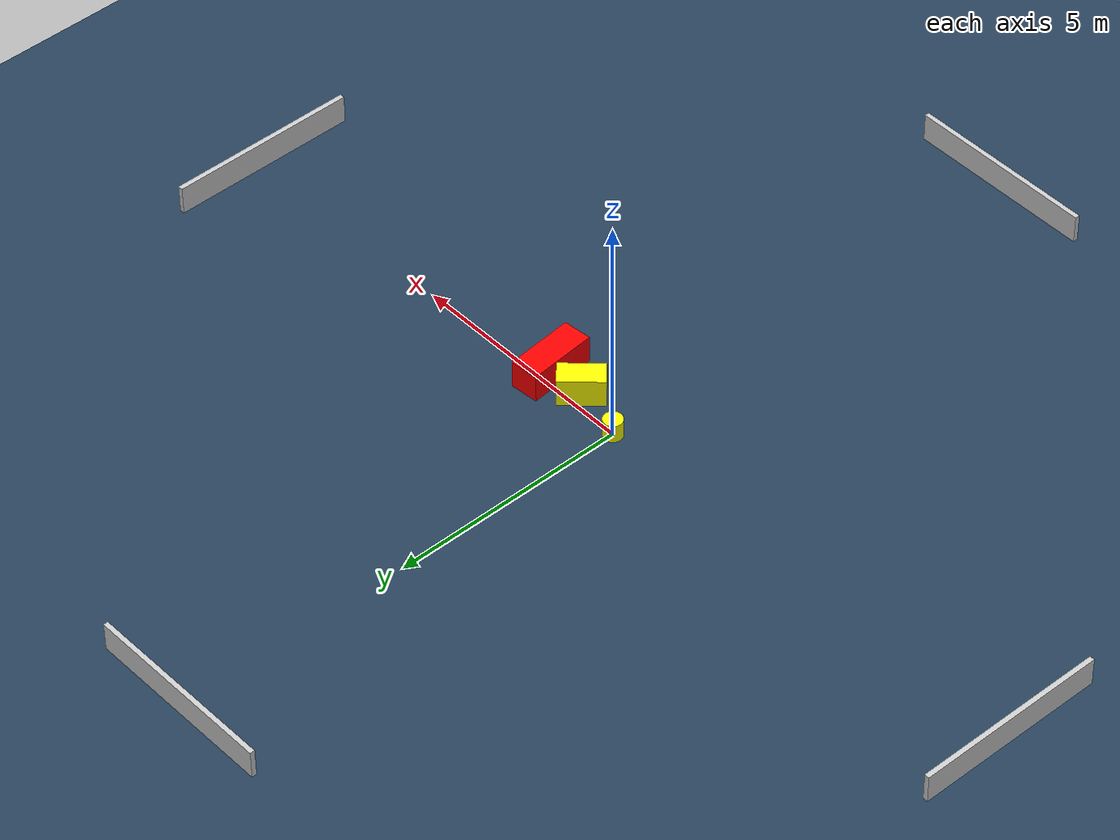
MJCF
<?xml version="1.0" ?>
<mujoco model="generated_environment">
  <option timestep="0.01" integrator="RK4" cone="elliptic"/>
  <default>
    <geom density="1"/>
  </default>
  <asset>
    <texture builtin="gradient" height="3072" name="skybox" rgb1="0.3 0.5 0.7" rgb2="0 0 0" type="skybox" width="512"/>
    <texture builtin="checker" height="300" name="groundplane" rgb1="0.2 0.3 0.4" rgb2="0.1 0.2 0.3" type="2d" width="300"/>
    <material name="groundplane" reflectance="0.2" texrepeat="5 5" texture="groundplane"/>
  </asset>
  <worldbody>
    <light dir="0 0 -1" directional="true" pos="0 0 1.5"/>
    <geom condim="3" friction="0.5 0.005 0.001" material="groundplane" name="floor" pos="0 0 0" size="0 0 0.05" type="plane"/>
    <body name="walls">
      <geom name="wall_1" condim="4" pos="-10.0 0.0 0.3" rgba="0.800000011920929 0.800000011920929 0.800000011920929 1.0" size="0.05 2.0 0.3" type="box"/>
      <geom name="wall_2" condim="4" pos="10.0 0.0 0.3" rgba="0.800000011920929 0.800000011920929 0.800000011920929 1.0" size="0.05 2.0 0.3" type="box"/>
      <geom name="wall_3" condim="4" pos="0.0 -10.0 0.3" rgba="0.800000011920929 0.800000011920929 0.800000011920929 1.0" size="2.0 0.05 0.3" type="box"/>
      <geom name="wall_4" condim="4" pos="0.0 10.0 0.3" rgba="0.800000011920929 0.800000011920929 0.800000011920929 1.0" size="2.0 0.05 0.3" type="box"/>
    </body>
    <body name="robot">
      <joint name="joint_x" type="slide" pos="0 0 0" axis="1 0 0"/>
      <joint name="joint_y" type="slide" pos="0 0 0" axis="0 1 0"/>
      <geom name="robot" type="cylinder" pos="0.0 0.0 0.2" size="0.2 0.2 0.0" mass="5.0" friction="1.0 0.005 0.0001" condim="4" rgba="1.0 1.0 0.0 1.0"/>
    </body>
    <body name="obstacle_1_movable">
      <geom name="obstacle_1_movable" condim="4" pos="1.1301000738725762 -0.2523732347909282 0.3" euler="0 0 136.8008590374025" friction="0.0 0.005 0.001" rgba="1.0 1.0 0.0 1.0" size="0.25053052537249365 0.462092613388531 0.3" type="box" mass="0.1"/>
      <joint type="free"/>
    </body>
    <body name="obstacle_2_static">
      <geom name="obstacle_2_static" condim="4" pos="1.95479985509814 -0.23781100108127898 0.3" euler="0 0 95.29779045512416" friction="0.0 0.005 0.001" rgba="1.0 0.0 0.0 1.0" size="0.7212459756862253 0.29716467807609936 0.3" type="box"/>
    </body>
  </worldbody>
  <actuator>
    <motor name="actuator_x" joint="joint_x" gear="1" ctrlrange="-1 1"/>
    <motor name="actuator_y" joint="joint_y" gear="1" ctrlrange="-1 1"/>
  </actuator>
</mujoco>
